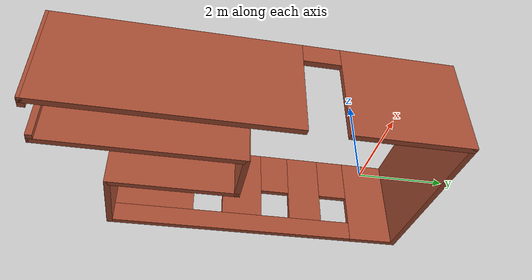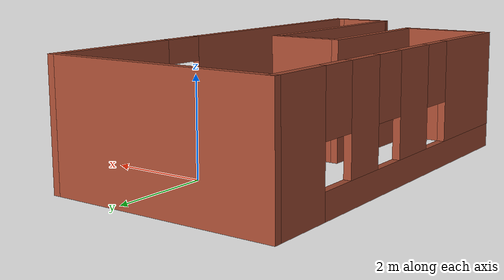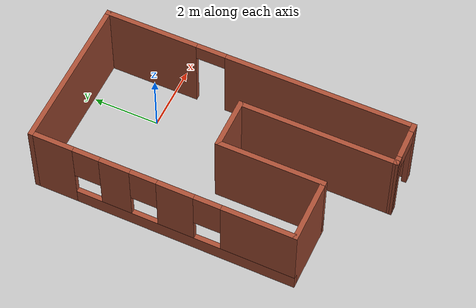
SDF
<?xml version='1.0'?>
<sdf version='1.7'>
  <model name='flat'>
    <pose>-0.952966 -2.56475 0 0 -0 0</pose>
    <link name='Wall_2'>
      <collision name='Wall_2_Collision'>
        <geometry>
          <box>
            <size>4.75 0.15 2.5</size>
          </box>
        </geometry>
        <pose>0 0 1.25 0 -0 0</pose>
      </collision>
      <visual name='Wall_2_Visual'>
        <pose>0 0 1.25 0 -0 0</pose>
        <geometry>
          <box>
            <size>4.75 0.15 2.5</size>
          </box>
        </geometry>
        <material>
          <script>
            <uri>file://media/materials/scripts/gazebo.material</uri>
            <name>Gazebo/Bricks</name>
          </script>
          <ambient>1 1 1 1</ambient>
        </material>
        <meta>
          <layer>0</layer>
        </meta>
      </visual>
      <pose>-0.000925 4.68569 0 0 -0 3.14159</pose>
    </link>
    <link name='Wall_3'>
      <pose>-2.30092 0.760687 0 0 -0 -1.5708</pose>
      <visual name='Wall_3_Visual_0'>
        <pose>-3.32226 0 1.25 0 -0 0</pose>
        <geometry>
          <box>
            <size>1.35547 0.15 2.5</size>
          </box>
        </geometry>
        <material>
          <script>
            <uri>file://media/materials/scripts/gazebo.material</uri>
            <name>Gazebo/Bricks</name>
          </script>
          <ambient>1 1 1 1</ambient>
        </material>
        <meta>
          <layer>0</layer>
        </meta>
      </visual>
      <collision name='Wall_3_Collision_0'>
        <geometry>
          <box>
            <size>1.35547 0.15 2.5</size>
          </box>
        </geometry>
        <pose>-3.32226 0 1.25 0 -0 0</pose>
      </collision>
      <visual name='Wall_3_Visual_1'>
        <pose>0.677737 0 0.25 0 -0 0</pose>
        <geometry>
          <box>
            <size>6.64453 0.15 0.5</size>
          </box>
        </geometry>
        <material>
          <script>
            <uri>file://media/materials/scripts/gazebo.material</uri>
            <name>Gazebo/Bricks</name>
          </script>
          <ambient>1 1 1 1</ambient>
        </material>
        <meta>
          <layer>0</layer>
        </meta>
      </visual>
      <collision name='Wall_3_Collision_1'>
        <geometry>
          <box>
            <size>6.64453 0.15 0.5</size>
          </box>
        </geometry>
        <pose>0.677737 0 0.25 0 -0 0</pose>
      </collision>
      <visual name='Wall_3_Visual_2'>
        <pose>-1.38485 0 1.5 0 -0 0</pose>
        <geometry>
          <box>
            <size>0.919362 0.15 2</size>
          </box>
        </geometry>
        <material>
          <script>
            <uri>file://media/materials/scripts/gazebo.material</uri>
            <name>Gazebo/Bricks</name>
          </script>
          <ambient>1 1 1 1</ambient>
        </material>
        <meta>
          <layer>0</layer>
        </meta>
      </visual>
      <collision name='Wall_3_Collision_2'>
        <geometry>
          <box>
            <size>0.919362 0.15 2</size>
          </box>
        </geometry>
        <pose>-1.38485 0 1.5 0 -0 0</pose>
      </collision>
      <visual name='Wall_3_Visual_3'>
        <pose>0.425541 0 1.5 0 -0 0</pose>
        <geometry>
          <box>
            <size>1.10141 0.15 2</size>
          </box>
        </geometry>
        <material>
          <script>
            <uri>file://media/materials/scripts/gazebo.material</uri>
            <name>Gazebo/Bricks</name>
          </script>
          <ambient>1 1 1 1</ambient>
        </material>
        <meta>
          <layer>0</layer>
        </meta>
      </visual>
      <collision name='Wall_3_Collision_3'>
        <geometry>
          <box>
            <size>1.10141 0.15 2</size>
          </box>
        </geometry>
        <pose>0.425541 0 1.5 0 -0 0</pose>
      </collision>
      <visual name='Wall_3_Visual_4'>
        <pose>2.88812 0 1.5 0 -0 0</pose>
        <geometry>
          <box>
            <size>2.22375 0.15 2</size>
          </box>
        </geometry>
        <material>
          <script>
            <uri>file://media/materials/scripts/gazebo.material</uri>
            <name>Gazebo/Bricks</name>
          </script>
          <ambient>1 1 1 1</ambient>
        </material>
        <meta>
          <layer>0</layer>
        </meta>
      </visual>
      <collision name='Wall_3_Collision_4'>
        <geometry>
          <box>
            <size>2.22375 0.15 2</size>
          </box>
        </geometry>
        <pose>2.88812 0 1.5 0 -0 0</pose>
      </collision>
      <visual name='Wall_3_Visual_5'>
        <pose>-2.24453 0 1.9 0 -0 0</pose>
        <geometry>
          <box>
            <size>0.8 0.15 1.2</size>
          </box>
        </geometry>
        <material>
          <script>
            <uri>file://media/materials/scripts/gazebo.material</uri>
            <name>Gazebo/Bricks</name>
          </script>
          <ambient>1 1 1 1</ambient>
        </material>
        <meta>
          <layer>0</layer>
        </meta>
      </visual>
      <collision name='Wall_3_Collision_5'>
        <geometry>
          <box>
            <size>0.8 0.15 1.2</size>
          </box>
        </geometry>
        <pose>-2.24453 0 1.9 0 -0 0</pose>
      </collision>
      <visual name='Wall_3_Visual_6'>
        <pose>-0.525165 0 1.9 0 -0 0</pose>
        <geometry>
          <box>
            <size>0.8 0.15 1.2</size>
          </box>
        </geometry>
        <material>
          <script>
            <uri>file://media/materials/scripts/gazebo.material</uri>
            <name>Gazebo/Bricks</name>
          </script>
          <ambient>1 1 1 1</ambient>
        </material>
        <meta>
          <layer>0</layer>
        </meta>
      </visual>
      <collision name='Wall_3_Collision_6'>
        <geometry>
          <box>
            <size>0.8 0.15 1.2</size>
          </box>
        </geometry>
        <pose>-0.525165 0 1.9 0 -0 0</pose>
      </collision>
      <visual name='Wall_3_Visual_7'>
        <pose>1.37625 0 1.9 0 -0 0</pose>
        <geometry>
          <box>
            <size>0.8 0.15 1.2</size>
          </box>
        </geometry>
        <material>
          <script>
            <uri>file://media/materials/scripts/gazebo.material</uri>
            <name>Gazebo/Bricks</name>
          </script>
          <ambient>1 1 1 1</ambient>
        </material>
        <meta>
          <layer>0</layer>
        </meta>
      </visual>
      <collision name='Wall_3_Collision_7'>
        <geometry>
          <box>
            <size>0.8 0.15 1.2</size>
          </box>
        </geometry>
        <pose>1.37625 0 1.9 0 -0 0</pose>
      </collision>
    </link>
    <link name='Wall_4'>
      <collision name='Wall_4_Collision'>
        <geometry>
          <box>
            <size>2 0.15 2.5</size>
          </box>
        </geometry>
        <pose>0 0 1.25 0 -0 0</pose>
      </collision>
      <visual name='Wall_4_Visual'>
        <pose>0 0 1.25 0 -0 0</pose>
        <geometry>
          <box>
            <size>2 0.15 2.5</size>
          </box>
        </geometry>
        <material>
          <script>
            <uri>file://media/materials/scripts/gazebo.material</uri>
            <name>Gazebo/Bricks</name>
          </script>
          <ambient>1 1 1 1</ambient>
        </material>
        <meta>
          <layer>0</layer>
        </meta>
      </visual>
      <pose>-1.37593 -3.16431 0 0 -0 0</pose>
    </link>
    <link name='Wall_5'>
      <collision name='Wall_5_Collision'>
        <geometry>
          <box>
            <size>3.25 0.15 2.5</size>
          </box>
        </geometry>
        <pose>0 0 1.25 0 -0 0</pose>
      </collision>
      <visual name='Wall_5_Visual'>
        <pose>0 0 1.25 0 -0 0</pose>
        <geometry>
          <box>
            <size>3.25 0.15 2.5</size>
          </box>
        </geometry>
        <material>
          <script>
            <uri>file://media/materials/scripts/gazebo.material</uri>
            <name>Gazebo/Bricks</name>
          </script>
          <ambient>1 1 1 1</ambient>
        </material>
        <meta>
          <layer>0</layer>
        </meta>
      </visual>
      <pose>-0.450925 -1.61431 0 0 -0 1.5708</pose>
    </link>
    <link name='Wall_6'>
      <collision name='Wall_6_Collision'>
        <geometry>
          <box>
            <size>1.58818 0.15 2.5</size>
          </box>
        </geometry>
        <pose>0 0 1.25 0 -0 0</pose>
      </collision>
      <visual name='Wall_6_Visual'>
        <pose>0 0 1.25 0 -0 0</pose>
        <geometry>
          <box>
            <size>1.58818 0.15 2.5</size>
          </box>
        </geometry>
        <material>
          <script>
            <uri>file://media/materials/scripts/gazebo.material</uri>
            <name>Gazebo/Bricks</name>
          </script>
          <ambient>1 1 1 1</ambient>
        </material>
        <meta>
          <layer>0</layer>
        </meta>
      </visual>
      <pose>0.268164 -0.064313 0 0 -0 0</pose>
    </link>
    <link name='Wall_7'>
      <collision name='Wall_7_Collision'>
        <geometry>
          <box>
            <size>4.75 0.15 2.5</size>
          </box>
        </geometry>
        <pose>0 0 1.25 0 -0 0</pose>
      </collision>
      <visual name='Wall_7_Visual'>
        <pose>0 0 1.25 0 -0 0</pose>
        <geometry>
          <box>
            <size>4.75 0.15 2.5</size>
          </box>
        </geometry>
        <material>
          <script>
            <uri>file://media/materials/scripts/gazebo.material</uri>
            <name>Gazebo/Bricks</name>
          </script>
          <ambient>1 1 1 1</ambient>
        </material>
        <meta>
          <layer>0</layer>
        </meta>
      </visual>
      <pose>0.987253 -2.38454 0 0 -0 -1.5708</pose>
    </link>
    <link name='Wall_8'>
      <pose>1.64352 -4.67443 0 0 -0 0.01541</pose>
      <visual name='Wall_8_Visual_0'>
        <pose>-0.589765 0 1.25 0 -0 0</pose>
        <geometry>
          <box>
            <size>0.283152 0.15 2.5</size>
          </box>
        </geometry>
        <material>
          <script>
            <uri>file://media/materials/scripts/gazebo.material</uri>
            <name>Gazebo/Bricks</name>
          </script>
          <ambient>1 1 1 1</ambient>
        </material>
        <meta>
          <layer>0</layer>
        </meta>
      </visual>
      <collision name='Wall_8_Collision_0'>
        <geometry>
          <box>
            <size>0.283152 0.15 2.5</size>
          </box>
        </geometry>
        <pose>-0.589765 0 1.25 0 -0 0</pose>
      </collision>
      <visual name='Wall_8_Visual_1'>
        <pose>0.591576 0 1.25 0 -0 0</pose>
        <geometry>
          <box>
            <size>0.27953 0.15 2.5</size>
          </box>
        </geometry>
        <material>
          <script>
            <uri>file://media/materials/scripts/gazebo.material</uri>
            <name>Gazebo/Bricks</name>
          </script>
          <ambient>1 1 1 1</ambient>
        </material>
        <meta>
          <layer>0</layer>
        </meta>
      </visual>
      <collision name='Wall_8_Collision_1'>
        <geometry>
          <box>
            <size>0.27953 0.15 2.5</size>
          </box>
        </geometry>
        <pose>0.591576 0 1.25 0 -0 0</pose>
      </collision>
      <visual name='Wall_8_Visual_2'>
        <pose>0.001811 0 2.25 0 -0 0</pose>
        <geometry>
          <box>
            <size>0.9 0.15 0.5</size>
          </box>
        </geometry>
        <material>
          <script>
            <uri>file://media/materials/scripts/gazebo.material</uri>
            <name>Gazebo/Bricks</name>
          </script>
          <ambient>1 1 1 1</ambient>
        </material>
        <meta>
          <layer>0</layer>
        </meta>
      </visual>
      <collision name='Wall_8_Collision_2'>
        <geometry>
          <box>
            <size>0.9 0.15 0.5</size>
          </box>
        </geometry>
        <pose>0.001811 0 2.25 0 -0 0</pose>
      </collision>
    </link>
    <link name='Wall_9'>
      <pose>2.29978 0.010687 0 0 -0 1.5708</pose>
      <visual name='Wall_9_Visual_0'>
        <pose>-1.88752 0 1.25 0 -0 0</pose>
        <geometry>
          <box>
            <size>5.72496 0.15 2.5</size>
          </box>
        </geometry>
        <material>
          <script>
            <uri>file://media/materials/scripts/gazebo.material</uri>
            <name>Gazebo/Bricks</name>
          </script>
          <ambient>1 1 1 1</ambient>
        </material>
        <meta>
          <layer>0</layer>
        </meta>
      </visual>
      <collision name='Wall_9_Collision_0'>
        <geometry>
          <box>
            <size>5.72496 0.15 2.5</size>
          </box>
        </geometry>
        <pose>-1.88752 0 1.25 0 -0 0</pose>
      </collision>
      <visual name='Wall_9_Visual_1'>
        <pose>3.31248 0 1.25 0 -0 0</pose>
        <geometry>
          <box>
            <size>2.87504 0.15 2.5</size>
          </box>
        </geometry>
        <material>
          <script>
            <uri>file://media/materials/scripts/gazebo.material</uri>
            <name>Gazebo/Bricks</name>
          </script>
          <ambient>1 1 1 1</ambient>
        </material>
        <meta>
          <layer>0</layer>
        </meta>
      </visual>
      <collision name='Wall_9_Collision_1'>
        <geometry>
          <box>
            <size>2.87504 0.15 2.5</size>
          </box>
        </geometry>
        <pose>3.31248 0 1.25 0 -0 0</pose>
      </collision>
      <visual name='Wall_9_Visual_2'>
        <pose>1.42496 0 2.25 0 -0 0</pose>
        <geometry>
          <box>
            <size>0.9 0.15 0.5</size>
          </box>
        </geometry>
        <material>
          <script>
            <uri>file://media/materials/scripts/gazebo.material</uri>
            <name>Gazebo/Bricks</name>
          </script>
          <ambient>1 1 1 1</ambient>
        </material>
        <meta>
          <layer>0</layer>
        </meta>
      </visual>
      <collision name='Wall_9_Collision_2'>
        <geometry>
          <box>
            <size>0.9 0.15 0.5</size>
          </box>
        </geometry>
        <pose>1.42496 0 2.25 0 -0 0</pose>
      </collision>
    </link>
    <static>1</static>
  </model>
</sdf>
